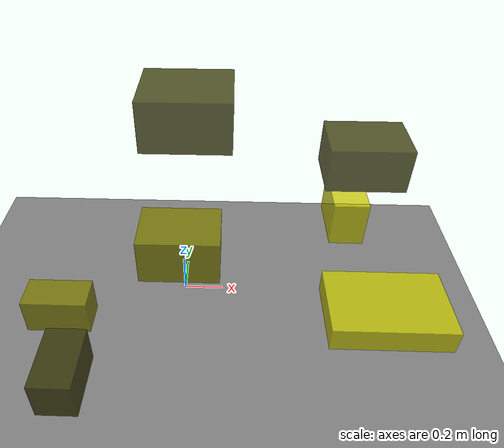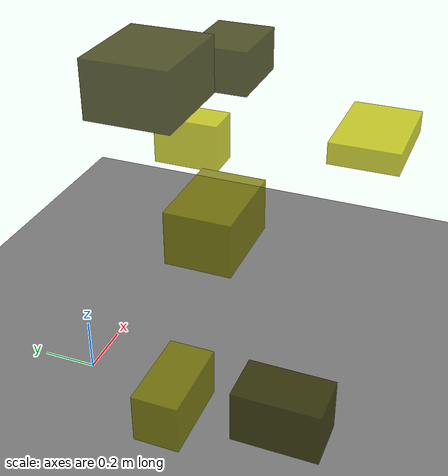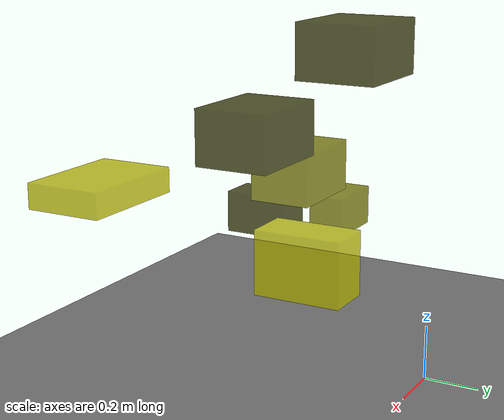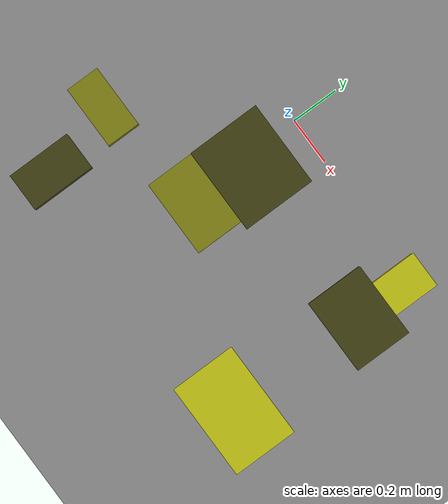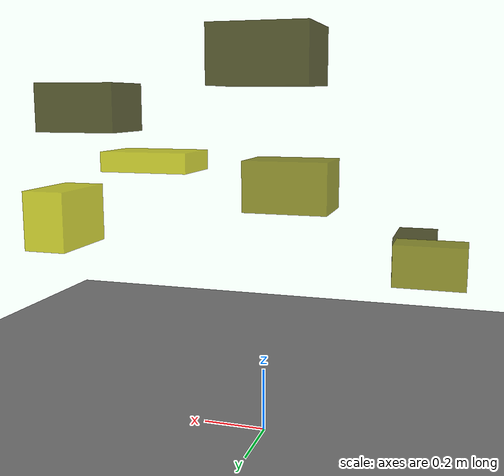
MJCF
<?xml version="1.0"?>
<mujoco model="obstacle_scene">
  <compiler angle="radian" coordinate="local"/>
  <option timestep="0.001" gravity="0 0 -9.81"/>

  <asset>
    <material name="obstacle_mat" rgba="0.8 0.8 0.0 0.8"/>
    <material name="ground_mat" rgba="0.5 0.5 0.5 1"/>
  </asset>

  <worldbody>
    <!-- Ground plane -->
    <geom name="ground" type="plane" size="3 3 0.1" material="ground_mat"/>

    <!-- Obstacles -->
    <body name="obstacle_0" pos="-0.388043 -0.877198 0.420399">
      <geom name="obs_0" type="box" size="0.079533 0.134268 0.085421" rgba="0.2 0.2 0.0 0.8"/>
    </body>
    <body name="obstacle_1" pos="-0.467076 -0.571325 0.447761">
      <geom name="obs_1" type="box" size="0.131954 0.070176 0.078332" rgba="0.5 0.5 0.0 0.8"/>
    </body>
    <body name="obstacle_2" pos="0.751332 -0.100696 0.642605">
      <geom name="obs_2" type="box" size="0.074175 0.137699 0.100904" rgba="0.8 0.8 0.0 0.8"/>
    </body>
    <body name="obstacle_3" pos="0.741158 -0.279104 1.014962">
      <geom name="obs_3" type="box" size="0.151302 0.115715 0.085939" rgba="0.2 0.2 0.0 0.8"/>
    </body>
    <body name="obstacle_4" pos="0.040391 -0.496283 0.732003">
      <geom name="obs_4" type="box" size="0.157103 0.112722 0.093977" rgba="0.5 0.5 0.0 0.8"/>
    </body>
    <body name="obstacle_5" pos="0.748738 -0.853355 0.778037">
      <geom name="obs_5" type="box" size="0.196983 0.133458 0.043193" rgba="0.8 0.8 0.0 0.8"/>
    </body>
    <body name="obstacle_6" pos="0.064605 -0.269782 1.187276">
      <geom name="obs_6" type="box" size="0.170627 0.145099 0.099045" rgba="0.2 0.2 0.0 0.8"/>
    </body>
  </worldbody>
</mujoco>
